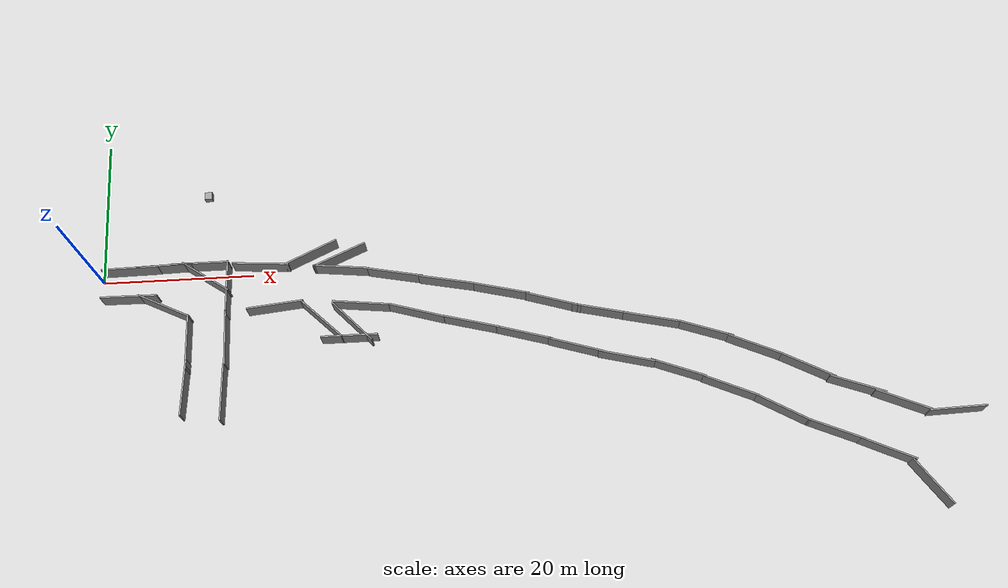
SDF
<sdf version="1.4">
 <world name="default">
  <light name="sun" type="directional">
   <pose>0 0 10 0 -0 0</pose>
   <diffuse>0.8 0.8 0.8 1</diffuse>
   <specular>0.2 0.2 0.2 1</specular>
   <attenuation>
    <range>1000</range>
    <constant>0.9</constant>
    <linear>0.01</linear>
    <quadratic>0.001</quadratic>
   </attenuation>
   <direction>-0.5 0.1 -0.9</direction>
  </light>
  <model name="ground_plane">
   <static>1</static>
   <link name="link">
    <collision name="collision">
     <geometry><plane><normal>0 0 1</normal><size>100 100</size></plane></geometry>
     <surface><friction><ode><mu>100</mu><mu2>50</mu2></ode></friction></surface>
    </collision>
    <visual name="visual">
     <cast_shadows>0</cast_shadows>
     <geometry><plane><normal>0 0 1</normal><size>100 100</size></plane></geometry>
     <material>
      <script><uri>file://media/materials/scripts/gazebo.material</uri><name>Gazebo/Grey</name></script>
     </material>
    </visual>
    <velocity_decay><linear>0</linear><angular>0</angular></velocity_decay>
   </link>
  </model>
  <physics type="ode">
   <max_step_size>0.001</max_step_size>
   <real_time_factor>1</real_time_factor>
   <real_time_update_rate>1000</real_time_update_rate>
   <gravity>0 0 -9.8</gravity>
  </physics>
  <scene><ambient>0.4 0.4 0.4 1</ambient><background>0.7 0.7 0.7 1</background><shadows>1</shadows></scene>
  <spherical_coordinates>
   <surface_model>EARTH_WGS84</surface_model>
   <latitude_deg>0</latitude_deg>
   <longitude_deg>0</longitude_deg>
   <elevation>0</elevation>
   <heading_deg>0</heading_deg>
  </spherical_coordinates>
  <model name="grey_wall">
   <static>1</static>
   <link name="link">
    <pose>0 0 1.4 0 -0 0</pose>
    <collision name="collision"><geometry><box><size>7.5 0.2 2.8</size></box></geometry></collision>
    <visual name="visual">
     <cast_shadows>0</cast_shadows>
     <geometry><box><size>7.5 0.2 2.8</size></box></geometry>
     <material>
      <script>
       <uri>model://grey_wall/materials/scripts</uri>
       <uri>model://grey_wall/materials/textures</uri>
       <name>vrc/grey_wall</name>
      </script>
     </material>
    </visual>
    <velocity_decay><linear>0</linear><angular>0</angular></velocity_decay>
   </link>
   <pose>4 1 0 0 -0 0.014201</pose>
  </model>
  <model name="grey_wall_0">
   <static>1</static>
   <link name="link">
    <pose>0 0 1.4 0 -0 0</pose>
    <collision name="collision"><geometry><box><size>7.5 0.2 2.8</size></box></geometry></collision>
    <visual name="visual">
     <cast_shadows>0</cast_shadows>
     <geometry><box><size>7.5 0.2 2.8</size></box></geometry>
     <material>
      <script>
       <uri>model://grey_wall/materials/scripts</uri>
       <uri>model://grey_wall/materials/textures</uri>
       <name>vrc/grey_wall</name>
      </script>
     </material>
    </visual>
    <velocity_decay><linear>0</linear><angular>0</angular></velocity_decay>
   </link>
   <pose>4 -3 0 0 0 -0.008423</pose>
  </model>
  <model name="grey_wall_5">
   <static>1</static>
   <link name="link">
    <pose>0 0 1.4 0 -0 0</pose>
    <collision name="collision"><geometry><box><size>7.5 0.2 2.8</size></box></geometry></collision>
    <visual name="visual">
     <cast_shadows>0</cast_shadows>
     <geometry><box><size>7.5 0.2 2.8</size></box></geometry>
     <material>
      <script>
       <uri>model://grey_wall/materials/scripts</uri>
       <uri>model://grey_wall/materials/textures</uri>
       <name>vrc/grey_wall</name>
      </script>
     </material>
    </visual>
    <velocity_decay><linear>0</linear><angular>0</angular></velocity_decay>
   </link>
   <pose>8.64223 1.11492 -0 0 -0 0.02434</pose>
  </model>
  <model name="grey_wall_6">
   <static>1</static>
   <link name="link">
    <pose>0 0 1.4 0 -0 0</pose>
    <collision name="collision"><geometry><box><size>7.5 0.2 2.8</size></box></geometry></collision>
    <visual name="visual">
     <cast_shadows>0</cast_shadows>
     <geometry><box><size>7.5 0.2 2.8</size></box></geometry>
     <material>
      <script>
       <uri>model://grey_wall/materials/scripts</uri>
       <uri>model://grey_wall/materials/textures</uri>
       <name>vrc/grey_wall</name>
      </script>
     </material>
    </visual>
    <velocity_decay><linear>0</linear><angular>0</angular></velocity_decay>
   </link>
   <pose>16.4804 -16.7549 0 0 0 -1.61492</pose>
  </model>
  <model name="grey_wall_7">
   <static>1</static>
   <link name="link">
    <pose>0 0 1.4 0 -0 0</pose>
    <collision name="collision"><geometry><box><size>7.5 0.2 2.8</size></box></geometry></collision>
    <visual name="visual">
     <cast_shadows>0</cast_shadows>
     <geometry><box><size>7.5 0.2 2.8</size></box></geometry>
     <material>
      <script>
       <uri>model://grey_wall/materials/scripts</uri>
       <uri>model://grey_wall/materials/textures</uri>
       <name>vrc/grey_wall</name>
      </script>
     </material>
    </visual>
    <velocity_decay><linear>0</linear><angular>0</angular></velocity_decay>
   </link>
   <pose>11.4969 -15.8951 -0 0 0 -1.65172</pose>
  </model>
  <model name="grey_wall_8">
   <static>1</static>
   <link name="link">
    <pose>0 0 1.4 0 -0 0</pose>
    <collision name="collision"><geometry><box><size>7.5 0.2 2.8</size></box></geometry></collision>
    <visual name="visual">
     <cast_shadows>0</cast_shadows>
     <geometry><box><size>7.5 0.2 2.8</size></box></geometry>
     <material>
      <script>
       <uri>model://grey_wall/materials/scripts</uri>
       <uri>model://grey_wall/materials/textures</uri>
       <name>vrc/grey_wall</name>
      </script>
     </material>
    </visual>
    <velocity_decay><linear>0</linear><angular>0</angular></velocity_decay>
   </link>
   <pose>8.66601 -4.53725 0 0 0 -0.455487</pose>
  </model>
  <model name="grey_wall_9">
   <static>1</static>
   <link name="link">
    <pose>0 0 1.4 0 -0 0</pose>
    <collision name="collision"><geometry><box><size>7.5 0.2 2.8</size></box></geometry></collision>
    <visual name="visual">
     <cast_shadows>0</cast_shadows>
     <geometry><box><size>7.5 0.2 2.8</size></box></geometry>
     <material>
      <script>
       <uri>model://grey_wall/materials/scripts</uri>
       <uri>model://grey_wall/materials/textures</uri>
       <name>vrc/grey_wall</name>
      </script>
     </material>
    </visual>
    <velocity_decay><linear>0</linear><angular>0</angular></velocity_decay>
   </link>
   <pose>16.891 -2.39259 0 0 -0 1.54864</pose>
  </model>
  <model name="grey_wall_10">
   <static>1</static>
   <link name="link">
    <pose>0 0 1.4 0 -0 0</pose>
    <collision name="collision"><geometry><box><size>7.5 0.2 2.8</size></box></geometry></collision>
    <visual name="visual">
     <cast_shadows>0</cast_shadows>
     <geometry><box><size>7.5 0.2 2.8</size></box></geometry>
     <material>
      <script>
       <uri>model://grey_wall/materials/scripts</uri>
       <uri>model://grey_wall/materials/textures</uri>
       <name>vrc/grey_wall</name>
      </script>
     </material>
    </visual>
    <velocity_decay><linear>0</linear><angular>0</angular></velocity_decay>
   </link>
   <pose>11.8028 -9.68515 -0 0 0 -1.59238</pose>
  </model>
  <model name="grey_wall_11">
   <static>1</static>
   <link name="link">
    <pose>0 0 1.4 0 -0 0</pose>
    <collision name="collision"><geometry><box><size>7.5 0.2 2.8</size></box></geometry></collision>
    <visual name="visual">
     <cast_shadows>0</cast_shadows>
     <geometry><box><size>7.5 0.2 2.8</size></box></geometry>
     <material>
      <script>
       <uri>model://grey_wall/materials/scripts</uri>
       <uri>model://grey_wall/materials/textures</uri>
       <name>vrc/grey_wall</name>
      </script>
     </material>
    </visual>
    <velocity_decay><linear>0</linear><angular>0</angular></velocity_decay>
   </link>
   <pose>16.7794 -9.29994 0 0 -0 1.56503</pose>
  </model>
  <model name="grey_wall_12">
   <static>1</static>
   <link name="link">
    <pose>0 0 1.4 0 -0 0</pose>
    <collision name="collision"><geometry><box><size>7.5 0.2 2.8</size></box></geometry></collision>
    <visual name="visual">
     <cast_shadows>0</cast_shadows>
     <geometry><box><size>7.5 0.2 2.8</size></box></geometry>
     <material>
      <script>
       <uri>model://grey_wall/materials/scripts</uri>
       <uri>model://grey_wall/materials/textures</uri>
       <name>vrc/grey_wall</name>
      </script>
     </material>
    </visual>
    <velocity_decay><linear>0</linear><angular>0</angular></velocity_decay>
   </link>
   <pose>13.3529 1.20066 0 0 -0 0</pose>
  </model>
  <model name="grey_wall_13">
   <static>1</static>
   <link name="link">
    <pose>0 0 1.4 0 -0 0</pose>
    <collision name="collision"><geometry><box><size>7.5 0.2 2.8</size></box></geometry></collision>
    <visual name="visual">
     <cast_shadows>0</cast_shadows>
     <geometry><box><size>7.5 0.2 2.8</size></box></geometry>
     <material>
      <script>
       <uri>model://grey_wall/materials/scripts</uri>
       <uri>model://grey_wall/materials/textures</uri>
       <name>vrc/grey_wall</name>
      </script>
     </material>
    </visual>
    <velocity_decay><linear>0</linear><angular>0</angular></velocity_decay>
   </link>
   <pose>14.0529 -0.707827 -0 0 0 -0.598308</pose>
  </model>
  <model name="grey_wall_14">
   <static>1</static>
   <link name="link">
    <pose>0 0 1.4 0 -0 0</pose>
    <collision name="collision"><geometry><box><size>7.5 0.2 2.8</size></box></geometry></collision>
    <visual name="visual">
     <cast_shadows>0</cast_shadows>
     <geometry><box><size>7.5 0.2 2.8</size></box></geometry>
     <material>
      <script>
       <uri>model://grey_wall/materials/scripts</uri>
       <uri>model://grey_wall/materials/textures</uri>
       <name>vrc/grey_wall</name>
      </script>
     </material>
    </visual>
    <velocity_decay><linear>0</linear><angular>0</angular></velocity_decay>
   </link>
   <pose>21.294 0.694096 -0 0 0 -0.071412</pose>
  </model>
  <model name="grey_wall_15">
   <static>1</static>
   <link name="link">
    <pose>0 0 1.4 0 -0 0</pose>
    <collision name="collision"><geometry><box><size>7.5 0.2 2.8</size></box></geometry></collision>
    <visual name="visual">
     <cast_shadows>0</cast_shadows>
     <geometry><box><size>7.5 0.2 2.8</size></box></geometry>
     <material>
      <script>
       <uri>model://grey_wall/materials/scripts</uri>
       <uri>model://grey_wall/materials/textures</uri>
       <name>vrc/grey_wall</name>
      </script>
     </material>
    </visual>
    <velocity_decay><linear>0</linear><angular>0</angular></velocity_decay>
   </link>
   <pose>32.0009 -0.336757 -0 0 0 -0.10524</pose>
  </model>
  <model name="grey_wall_16">
   <static>1</static>
   <link name="link">
    <pose>0 0 1.4 0 -0 0</pose>
    <collision name="collision"><geometry><box><size>7.5 0.2 2.8</size></box></geometry></collision>
    <visual name="visual">
     <cast_shadows>0</cast_shadows>
     <geometry><box><size>7.5 0.2 2.8</size></box></geometry>
     <material>
      <script>
       <uri>model://grey_wall/materials/scripts</uri>
       <uri>model://grey_wall/materials/textures</uri>
       <name>vrc/grey_wall</name>
      </script>
     </material>
    </visual>
    <velocity_decay><linear>0</linear><angular>0</angular></velocity_decay>
   </link>
   <pose>39.2069 -1.49567 0 0 0 -0.194563</pose>
  </model>
  <model name="grey_wall_17">
   <static>1</static>
   <link name="link">
    <pose>0 0 1.4 0 -0 0</pose>
    <collision name="collision"><geometry><box><size>7.5 0.2 2.8</size></box></geometry></collision>
    <visual name="visual">
     <cast_shadows>0</cast_shadows>
     <geometry><box><size>7.5 0.2 2.8</size></box></geometry>
     <material>
      <script>
       <uri>model://grey_wall/materials/scripts</uri>
       <uri>model://grey_wall/materials/textures</uri>
       <name>vrc/grey_wall</name>
      </script>
     </material>
    </visual>
    <velocity_decay><linear>0</linear><angular>0</angular></velocity_decay>
   </link>
   <pose>45.9491 -2.90839 0 0 0 -0.195679</pose>
  </model>
  <model name="grey_wall_18">
   <static>1</static>
   <link name="link">
    <pose>0 0 1.4 0 -0 0</pose>
    <collision name="collision"><geometry><box><size>7.5 0.2 2.8</size></box></geometry></collision>
    <visual name="visual">
     <cast_shadows>0</cast_shadows>
     <geometry><box><size>7.5 0.2 2.8</size></box></geometry>
     <material>
      <script>
       <uri>model://grey_wall/materials/scripts</uri>
       <uri>model://grey_wall/materials/textures</uri>
       <name>vrc/grey_wall</name>
      </script>
     </material>
    </visual>
    <velocity_decay><linear>0</linear><angular>0</angular></velocity_decay>
   </link>
   <pose>53.1646 -4.52858 -0 0 0 -0.238812</pose>
  </model>
  <model name="grey_wall_19">
   <static>1</static>
   <link name="link">
    <pose>0 0 1.4 0 -0 0</pose>
    <collision name="collision"><geometry><box><size>7.5 0.2 2.8</size></box></geometry></collision>
    <visual name="visual">
     <cast_shadows>0</cast_shadows>
     <geometry><box><size>7.5 0.2 2.8</size></box></geometry>
     <material>
      <script>
       <uri>model://grey_wall/materials/scripts</uri>
       <uri>model://grey_wall/materials/textures</uri>
       <name>vrc/grey_wall</name>
      </script>
     </material>
    </visual>
    <velocity_decay><linear>0</linear><angular>0</angular></velocity_decay>
   </link>
   <pose>59.9382 -6.44824 0 0 0 -0.293893</pose>
  </model>
  <model name="grey_wall_20">
   <static>1</static>
   <link name="link">
    <pose>0 0 1.4 0 -0 0</pose>
    <collision name="collision"><geometry><box><size>7.5 0.2 2.8</size></box></geometry></collision>
    <visual name="visual">
     <cast_shadows>0</cast_shadows>
     <geometry><box><size>7.5 0.2 2.8</size></box></geometry>
     <material>
      <script>
       <uri>model://grey_wall/materials/scripts</uri>
       <uri>model://grey_wall/materials/textures</uri>
       <name>vrc/grey_wall</name>
      </script>
     </material>
    </visual>
    <velocity_decay><linear>0</linear><angular>0</angular></velocity_decay>
   </link>
   <pose>72.675 -9.60389 0 0 0 -0.219991</pose>
  </model>
  <model name="grey_wall_21">
   <static>1</static>
   <link name="link">
    <pose>0 0 1.4 0 -0 0</pose>
    <collision name="collision"><geometry><box><size>7.5 0.2 2.8</size></box></geometry></collision>
    <visual name="visual">
     <cast_shadows>0</cast_shadows>
     <geometry><box><size>7.5 0.2 2.8</size></box></geometry>
     <material>
      <script>
       <uri>model://grey_wall/materials/scripts</uri>
       <uri>model://grey_wall/materials/textures</uri>
       <name>vrc/grey_wall</name>
      </script>
     </material>
    </visual>
    <velocity_decay><linear>0</linear><angular>0</angular></velocity_decay>
   </link>
   <pose>79.6196 -11.5568 0 0 0 -0.332045</pose>
  </model>
  <model name="grey_wall_22">
   <static>1</static>
   <link name="link">
    <pose>0 0 1.4 0 -0 0</pose>
    <collision name="collision"><geometry><box><size>7.5 0.2 2.8</size></box></geometry></collision>
    <visual name="visual">
     <cast_shadows>0</cast_shadows>
     <geometry><box><size>7.5 0.2 2.8</size></box></geometry>
     <material>
      <script>
       <uri>model://grey_wall/materials/scripts</uri>
       <uri>model://grey_wall/materials/textures</uri>
       <name>vrc/grey_wall</name>
      </script>
     </material>
    </visual>
    <velocity_decay><linear>0</linear><angular>0</angular></velocity_decay>
   </link>
   <pose>85.8918 -14.1339 0 0 0 -0.411681</pose>
  </model>
  <model name="grey_wall_23">
   <static>1</static>
   <link name="link">
    <pose>0 0 1.4 0 -0 0</pose>
    <collision name="collision"><geometry><box><size>7.5 0.2 2.8</size></box></geometry></collision>
    <visual name="visual">
     <cast_shadows>0</cast_shadows>
     <geometry><box><size>7.5 0.2 2.8</size></box></geometry>
     <material>
      <script>
       <uri>model://grey_wall/materials/scripts</uri>
       <uri>model://grey_wall/materials/textures</uri>
       <name>vrc/grey_wall</name>
      </script>
     </material>
    </visual>
    <velocity_decay><linear>0</linear><angular>0</angular></velocity_decay>
   </link>
   <pose>66.0596 -8.08602 0 0 0 -0.226112</pose>
  </model>
  <model name="grey_wall_24">
   <static>1</static>
   <link name="link">
    <pose>0 0 1.4 0 -0 0</pose>
    <collision name="collision"><geometry><box><size>7.5 0.2 2.8</size></box></geometry></collision>
    <visual name="visual">
     <cast_shadows>0</cast_shadows>
     <geometry><box><size>7.5 0.2 2.8</size></box></geometry>
     <material>
      <script>
       <uri>model://grey_wall/materials/scripts</uri>
       <uri>model://grey_wall/materials/textures</uri>
       <name>vrc/grey_wall</name>
      </script>
     </material>
    </visual>
    <velocity_decay><linear>0</linear><angular>0</angular></velocity_decay>
   </link>
   <pose>23.2389 -5.17008 -0 0 -0 0.102073</pose>
  </model>
  <model name="grey_wall_25">
   <static>1</static>
   <link name="link">
    <pose>0 0 1.4 0 -0 0</pose>
    <collision name="collision"><geometry><box><size>7.5 0.2 2.8</size></box></geometry></collision>
    <visual name="visual">
     <cast_shadows>0</cast_shadows>
     <geometry><box><size>7.5 0.2 2.8</size></box></geometry>
     <material>
      <script>
       <uri>model://grey_wall/materials/scripts</uri>
       <uri>model://grey_wall/materials/textures</uri>
       <name>vrc/grey_wall</name>
      </script>
     </material>
    </visual>
    <velocity_decay><linear>0</linear><angular>0</angular></velocity_decay>
   </link>
   <pose>29.4056 -7.45475 0 0 0 -0.774963</pose>
  </model>
  <model name="grey_wall_26">
   <static>1</static>
   <link name="link">
    <pose>0 0 1.4 0 -0 0</pose>
    <collision name="collision"><geometry><box><size>7.5 0.2 2.8</size></box></geometry></collision>
    <visual name="visual">
     <cast_shadows>0</cast_shadows>
     <geometry><box><size>7.5 0.2 2.8</size></box></geometry>
     <material>
      <script>
       <uri>model://grey_wall/materials/scripts</uri>
       <uri>model://grey_wall/materials/textures</uri>
       <name>vrc/grey_wall</name>
      </script>
     </material>
    </visual>
    <velocity_decay><linear>0</linear><angular>0</angular></velocity_decay>
   </link>
   <pose>33.4081 -8.04448 0 0 0 -0.809073</pose>
  </model>
  <model name="grey_wall_27">
   <static>1</static>
   <link name="link">
    <pose>0 0 1.4 0 -0 0</pose>
    <collision name="collision"><geometry><box><size>7.5 0.2 2.8</size></box></geometry></collision>
    <visual name="visual">
     <cast_shadows>0</cast_shadows>
     <geometry><box><size>7.5 0.2 2.8</size></box></geometry>
     <material>
      <script>
       <uri>model://grey_wall/materials/scripts</uri>
       <uri>model://grey_wall/materials/textures</uri>
       <name>vrc/grey_wall</name>
      </script>
     </material>
    </visual>
    <velocity_decay><linear>0</linear><angular>0</angular></velocity_decay>
   </link>
   <pose>34.5235 -5.54637 0 0 0 -0.111396</pose>
  </model>
  <model name="grey_wall_28">
   <static>1</static>
   <link name="link">
    <pose>0 0 1.4 0 -0 0</pose>
    <collision name="collision"><geometry><box><size>7.5 0.2 2.8</size></box></geometry></collision>
    <visual name="visual">
     <cast_shadows>0</cast_shadows>
     <geometry><box><size>7.5 0.2 2.8</size></box></geometry>
     <material>
      <script>
       <uri>model://grey_wall/materials/scripts</uri>
       <uri>model://grey_wall/materials/textures</uri>
       <name>vrc/grey_wall</name>
      </script>
     </material>
    </visual>
    <velocity_decay><linear>0</linear><angular>0</angular></velocity_decay>
   </link>
   <pose>41.8608 -6.98088 0 0 0 -0.286155</pose>
  </model>
  <model name="grey_wall_29">
   <static>1</static>
   <link name="link">
    <pose>0 0 1.4 0 -0 0</pose>
    <collision name="collision"><geometry><box><size>7.5 0.2 2.8</size></box></geometry></collision>
    <visual name="visual">
     <cast_shadows>0</cast_shadows>
     <geometry><box><size>7.5 0.2 2.8</size></box></geometry>
     <material>
      <script>
       <uri>model://grey_wall/materials/scripts</uri>
       <uri>model://grey_wall/materials/textures</uri>
       <name>vrc/grey_wall</name>
      </script>
     </material>
    </visual>
    <velocity_decay><linear>0</linear><angular>0</angular></velocity_decay>
   </link>
   <pose>49.0612 -8.95038 0 0 0 -0.255138</pose>
  </model>
  <model name="grey_wall_30">
   <static>1</static>
   <link name="link">
    <pose>0 0 1.4 0 -0 0</pose>
    <collision name="collision"><geometry><box><size>7.5 0.2 2.8</size></box></geometry></collision>
    <visual name="visual">
     <cast_shadows>0</cast_shadows>
     <geometry><box><size>7.5 0.2 2.8</size></box></geometry>
     <material>
      <script>
       <uri>model://grey_wall/materials/scripts</uri>
       <uri>model://grey_wall/materials/textures</uri>
       <name>vrc/grey_wall</name>
      </script>
     </material>
    </visual>
    <velocity_decay><linear>0</linear><angular>0</angular></velocity_decay>
   </link>
   <pose>55.8831 -10.8414 0 0 0 -0.279767</pose>
  </model>
  <model name="grey_wall_31">
   <static>1</static>
   <link name="link">
    <pose>0 0 1.4 0 -0 0</pose>
    <collision name="collision"><geometry><box><size>7.5 0.2 2.8</size></box></geometry></collision>
    <visual name="visual">
     <cast_shadows>0</cast_shadows>
     <geometry><box><size>7.5 0.2 2.8</size></box></geometry>
     <material>
      <script>
       <uri>model://grey_wall/materials/scripts</uri>
       <uri>model://grey_wall/materials/textures</uri>
       <name>vrc/grey_wall</name>
      </script>
     </material>
    </visual>
    <velocity_decay><linear>0</linear><angular>0</angular></velocity_decay>
   </link>
   <pose>62.546 -12.8943 0 0 0 -0.298828</pose>
  </model>
  <model name="grey_wall_32">
   <static>1</static>
   <link name="link">
    <pose>0 0 1.4 0 -0 0</pose>
    <collision name="collision"><geometry><box><size>7.5 0.2 2.8</size></box></geometry></collision>
    <visual name="visual">
     <cast_shadows>0</cast_shadows>
     <geometry><box><size>7.5 0.2 2.8</size></box></geometry>
     <material>
      <script>
       <uri>model://grey_wall/materials/scripts</uri>
       <uri>model://grey_wall/materials/textures</uri>
       <name>vrc/grey_wall</name>
      </script>
     </material>
    </visual>
    <velocity_decay><linear>0</linear><angular>0</angular></velocity_decay>
   </link>
   <pose>69.009 -14.768 0 0 0 -0.245711</pose>
  </model>
  <model name="grey_wall_33">
   <static>1</static>
   <link name="link">
    <pose>0 0 1.4 0 -0 0</pose>
    <collision name="collision"><geometry><box><size>7.5 0.2 2.8</size></box></geometry></collision>
    <visual name="visual">
     <cast_shadows>0</cast_shadows>
     <geometry><box><size>7.5 0.2 2.8</size></box></geometry>
     <material>
      <script>
       <uri>model://grey_wall/materials/scripts</uri>
       <uri>model://grey_wall/materials/textures</uri>
       <name>vrc/grey_wall</name>
      </script>
     </material>
    </visual>
    <velocity_decay><linear>0</linear><angular>0</angular></velocity_decay>
   </link>
   <pose>75.5608 -16.7105 0 0 0 -0.362211</pose>
  </model>
  <model name="grey_wall_34">
   <static>1</static>
   <link name="link">
    <pose>0 0 1.4 0 -0 0</pose>
    <collision name="collision"><geometry><box><size>7.5 0.2 2.8</size></box></geometry></collision>
    <visual name="visual">
     <cast_shadows>0</cast_shadows>
     <geometry><box><size>7.5 0.2 2.8</size></box></geometry>
     <material>
      <script>
       <uri>model://grey_wall/materials/scripts</uri>
       <uri>model://grey_wall/materials/textures</uri>
       <name>vrc/grey_wall</name>
      </script>
     </material>
    </visual>
    <velocity_decay><linear>0</linear><angular>0</angular></velocity_decay>
   </link>
   <pose>82.0981 -19.4832 -0 0 0 -0.41161</pose>
  </model>
  <model name="grey_wall_35">
   <static>1</static>
   <link name="link">
    <pose>0 0 1.4 0 -0 0</pose>
    <collision name="collision"><geometry><box><size>7.5 0.2 2.8</size></box></geometry></collision>
    <visual name="visual">
     <cast_shadows>0</cast_shadows>
     <geometry><box><size>7.5 0.2 2.8</size></box></geometry>
     <material>
      <script>
       <uri>model://grey_wall/materials/scripts</uri>
       <uri>model://grey_wall/materials/textures</uri>
       <name>vrc/grey_wall</name>
      </script>
     </material>
    </visual>
    <velocity_decay><linear>0</linear><angular>0</angular></velocity_decay>
   </link>
   <pose>33 -10 0 0 -0 0</pose>
  </model>
  <model name="grey_wall_1">
   <static>1</static>
   <link name="link">
    <pose>0 0 1.4 0 -0 0</pose>
    <collision name="collision"><geometry><box><size>7.5 0.2 2.8</size></box></geometry></collision>
    <visual name="visual">
     <cast_shadows>0</cast_shadows>
     <geometry><box><size>7.5 0.2 2.8</size></box></geometry>
     <material>
      <script>
       <uri>model://grey_wall/materials/scripts</uri>
       <uri>model://grey_wall/materials/textures</uri>
       <name>vrc/grey_wall</name>
      </script>
     </material>
    </visual>
    <velocity_decay><linear>0</linear><angular>0</angular></velocity_decay>
   </link>
   <pose>88.5567 -22.7746 0 0 0 -0.519337</pose>
  </model>
  <model name="grey_wall_2">
   <static>1</static>
   <link name="link">
    <pose>0 0 1.4 0 -0 0</pose>
    <collision name="collision"><geometry><box><size>7.5 0.2 2.8</size></box></geometry></collision>
    <visual name="visual">
     <cast_shadows>0</cast_shadows>
     <geometry><box><size>7.5 0.2 2.8</size></box></geometry>
     <material>
      <script>
       <uri>model://grey_wall/materials/scripts</uri>
       <uri>model://grey_wall/materials/textures</uri>
       <name>vrc/grey_wall</name>
      </script>
     </material>
    </visual>
    <velocity_decay><linear>0</linear><angular>0</angular></velocity_decay>
   </link>
   <pose>92.4685 -17.303 0 0 0 -0.480786</pose>
  </model>
  <model name="grey_wall_3">
   <static>1</static>
   <link name="link">
    <pose>0 0 1.4 0 -0 0</pose>
    <collision name="collision"><geometry><box><size>7.5 0.2 2.8</size></box></geometry></collision>
    <visual name="visual">
     <cast_shadows>0</cast_shadows>
     <geometry><box><size>7.5 0.2 2.8</size></box></geometry>
     <material>
      <script>
       <uri>model://grey_wall/materials/scripts</uri>
       <uri>model://grey_wall/materials/textures</uri>
       <name>vrc/grey_wall</name>
      </script>
     </material>
    </visual>
    <velocity_decay><linear>0</linear><angular>0</angular></velocity_decay>
   </link>
   <pose>94.9926 -25.9842 0 0 0 -0.40739</pose>
  </model>
  <model name="grey_wall_4">
   <static>1</static>
   <link name="link">
    <pose>0 0 1.4 0 -0 0</pose>
    <collision name="collision"><geometry><box><size>7.5 0.2 2.8</size></box></geometry></collision>
    <visual name="visual">
     <cast_shadows>0</cast_shadows>
     <geometry><box><size>7.5 0.2 2.8</size></box></geometry>
     <material>
      <script>
       <uri>model://grey_wall/materials/scripts</uri>
       <uri>model://grey_wall/materials/textures</uri>
       <name>vrc/grey_wall</name>
      </script>
     </material>
    </visual>
    <velocity_decay><linear>0</linear><angular>0</angular></velocity_decay>
   </link>
   <pose>98.5642 -20.1614 0 0 0 -0.352405</pose>
  </model>
  <model name="grey_wall_36">
   <static>1</static>
   <link name="link">
    <pose>0 0 1.4 0 -0 0</pose>
    <collision name="collision"><geometry><box><size>7.5 0.2 2.8</size></box></geometry></collision>
    <visual name="visual">
     <cast_shadows>0</cast_shadows>
     <geometry><box><size>7.5 0.2 2.8</size></box></geometry>
     <material>
      <script>
       <uri>model://grey_wall/materials/scripts</uri>
       <uri>model://grey_wall/materials/textures</uri>
       <name>vrc/grey_wall</name>
      </script>
     </material>
    </visual>
    <velocity_decay><linear>0</linear><angular>0</angular></velocity_decay>
   </link>
   <pose>101.365 -28.8655 0 0 0 -0.432119</pose>
  </model>
  <model name="grey_wall_37">
   <static>1</static>
   <link name="link">
    <pose>0 0 1.4 0 -0 0</pose>
    <collision name="collision"><geometry><box><size>7.5 0.2 2.8</size></box></geometry></collision>
    <visual name="visual">
     <cast_shadows>0</cast_shadows>
     <geometry><box><size>7.5 0.2 2.8</size></box></geometry>
     <material>
      <script>
       <uri>model://grey_wall/materials/scripts</uri>
       <uri>model://grey_wall/materials/textures</uri>
       <name>vrc/grey_wall</name>
      </script>
     </material>
    </visual>
    <velocity_decay><linear>0</linear><angular>0</angular></velocity_decay>
   </link>
   <pose>104.122 -22.5916 0 0 0 -0.405139</pose>
  </model>
  <model name="grey_wall_38">
   <static>1</static>
   <link name="link">
    <pose>0 0 1.4 0 -0 0</pose>
    <collision name="collision"><geometry><box><size>7.5 0.2 2.8</size></box></geometry></collision>
    <visual name="visual">
     <cast_shadows>0</cast_shadows>
     <geometry><box><size>7.5 0.2 2.8</size></box></geometry>
     <material>
      <script>
       <uri>model://grey_wall/materials/scripts</uri>
       <uri>model://grey_wall/materials/textures</uri>
       <name>vrc/grey_wall</name>
      </script>
     </material>
    </visual>
    <velocity_decay><linear>0</linear><angular>0</angular></velocity_decay>
   </link>
   <pose>106.363 -33.3846 0 0 0 -0.941959</pose>
  </model>
  <model name="grey_wall_39">
   <static>1</static>
   <link name="link">
    <pose>0 0 1.4 0 -0 0</pose>
    <collision name="collision"><geometry><box><size>7.5 0.2 2.8</size></box></geometry></collision>
    <visual name="visual">
     <cast_shadows>0</cast_shadows>
     <geometry><box><size>7.5 0.2 2.8</size></box></geometry>
     <material>
      <script>
       <uri>model://grey_wall/materials/scripts</uri>
       <uri>model://grey_wall/materials/textures</uri>
       <name>vrc/grey_wall</name>
      </script>
     </material>
    </visual>
    <velocity_decay><linear>0</linear><angular>0</angular></velocity_decay>
   </link>
   <pose>111.013 -24.0371 0 0 -0 0.032665</pose>
  </model>
  <model name="grey_wall_40">
   <static>1</static>
   <link name="link">
    <pose>0 0 1.4 0 -0 0</pose>
    <collision name="collision"><geometry><box><size>7.5 0.2 2.8</size></box></geometry></collision>
    <visual name="visual">
     <cast_shadows>0</cast_shadows>
     <geometry><box><size>7.5 0.2 2.8</size></box></geometry>
     <material>
      <script>
       <uri>model://grey_wall/materials/scripts</uri>
       <uri>model://grey_wall/materials/textures</uri>
       <name>vrc/grey_wall</name>
      </script>
     </material>
    </visual>
    <velocity_decay><linear>0</linear><angular>0</angular></velocity_decay>
   </link>
   <pose>28 2 0 0 -0 0.429583</pose>
  </model>
  <model name="grey_wall_41">
   <static>1</static>
   <link name="link">
    <pose>0 0 1.4 0 -0 0</pose>
    <collision name="collision"><geometry><box><size>7.5 0.2 2.8</size></box></geometry></collision>
    <visual name="visual">
     <cast_shadows>0</cast_shadows>
     <geometry><box><size>7.5 0.2 2.8</size></box></geometry>
     <material>
      <script>
       <uri>model://grey_wall/materials/scripts</uri>
       <uri>model://grey_wall/materials/textures</uri>
       <name>vrc/grey_wall</name>
      </script>
     </material>
    </visual>
    <velocity_decay><linear>0</linear><angular>0</angular></velocity_decay>
   </link>
   <pose>31.7946 1.43009 -0 0 -0 0.408837</pose>
  </model>
  <model name="unit_box_1">
   <pose>13.8526 11.7182 0.5 0 -0 0</pose>
   <link name="link">
    <inertial>
     <mass>1</mass>
     <inertia><ixx>1</ixx><ixy>0</ixy><ixz>0</ixz><iyy>1</iyy><iyz>0</iyz><izz>1</izz></inertia>
    </inertial>
    <collision name="collision"><geometry><box><size>1 1 1</size></box></geometry></collision>
    <visual name="visual">
     <geometry><box><size>1 1 1</size></box></geometry>
     <material>
      <script><uri>file://media/materials/scripts/gazebo.material</uri><name>Gazebo/Grey</name></script>
     </material>
    </visual>
    <velocity_decay><linear>0</linear><angular>0</angular></velocity_decay>
   </link>
   <static>0</static>
  </model>
 </world>
</sdf>
